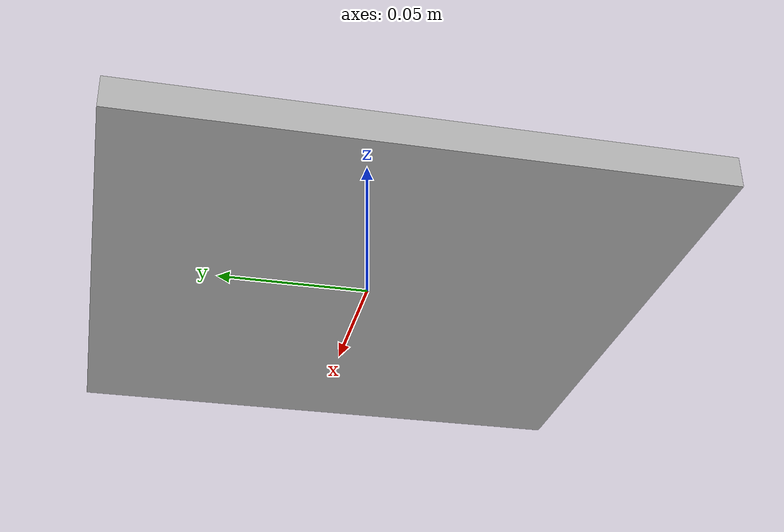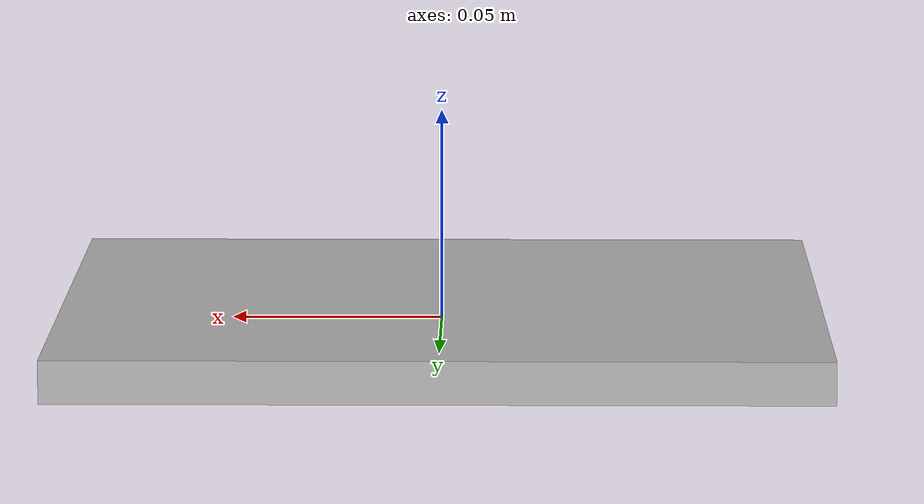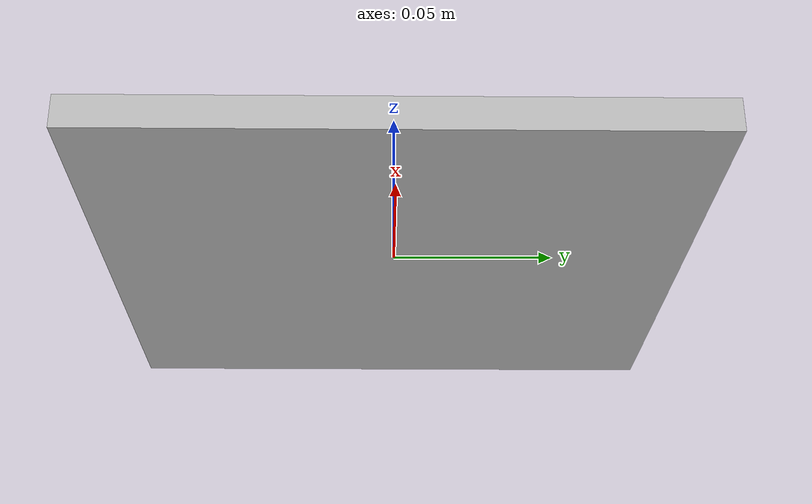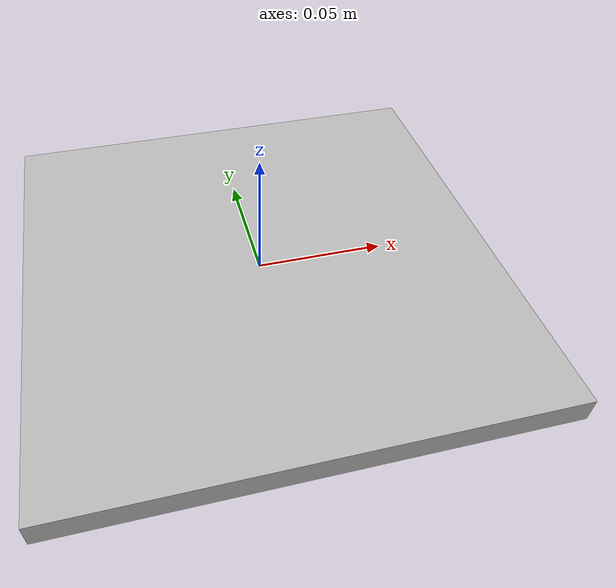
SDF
<?xml version='1.0'?>
<sdf version='1.5'>
  <model name='ar_tag1'>
    <static>true</static>
    <link name="tag1_link">

        <visual name="visual_ar_tag1">
        <geometry>
                <mesh>
                    <uri>model://AR_tag1/meshes/ar_tag1.dae</uri>
                </mesh>
            </geometry>
        </visual>
         <collision name="collision_ar_tag1">
                <geometry>
                <mesh>
                    <uri>model://AR_tag1/meshes/ar_tag1.dae</uri>
                </mesh>
            </geometry>
        </collision>

    </link>
  </model>
</sdf>
~
